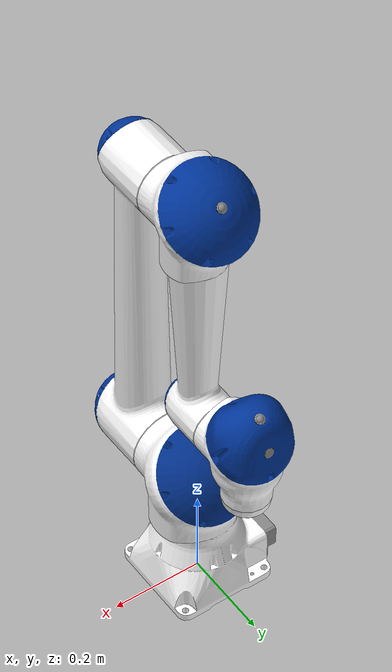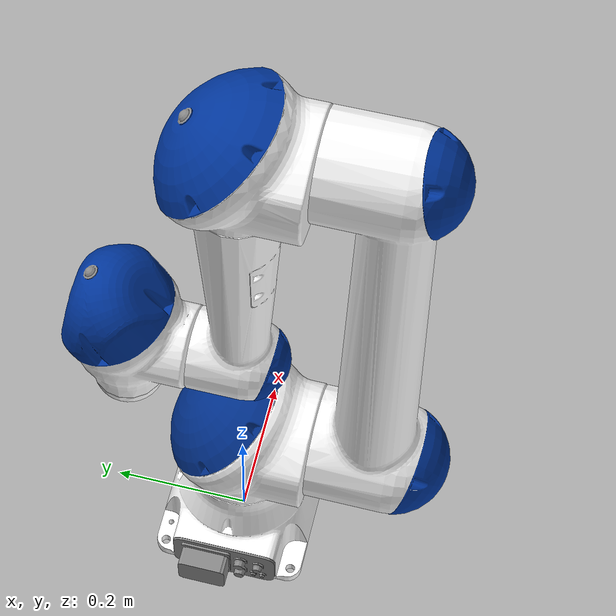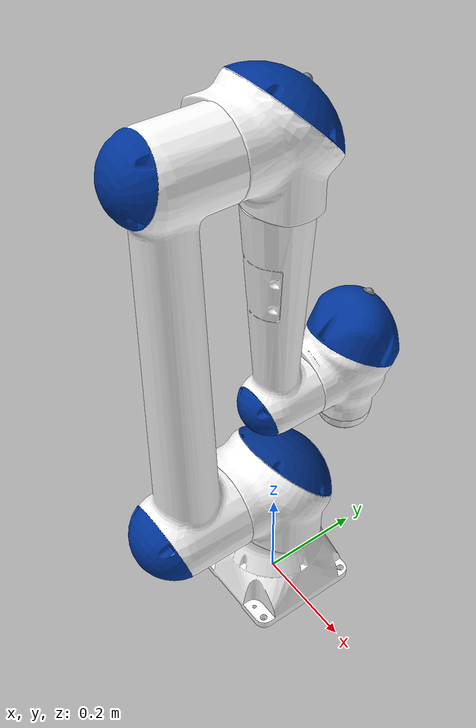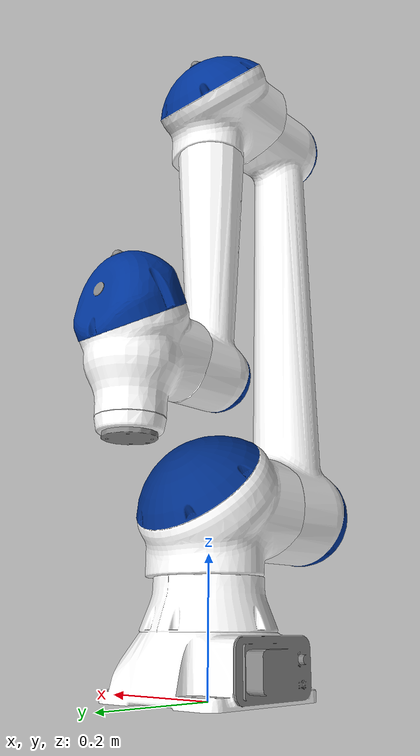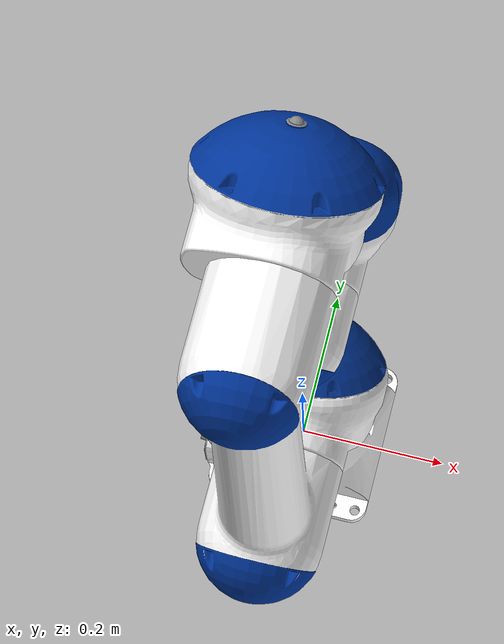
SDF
<?xml version="1.0"?>
<sdf version="1.9">
  <model name="yaskawa_hc10">
    <self_collide>false</self_collide>
    <allow_auto_disable>false</allow_auto_disable>

    <link name="base_link">
      <inertial>
        <pose>0 0 0.10 0 0 0</pose>
        <mass>24.0</mass>
        <inertia>
          <ixx>0.35</ixx>
          <iyy>0.35</iyy>
          <izz>0.30</izz>
          <ixy>0</ixy>
          <ixz>0</ixz>
          <iyz>0</iyz>
        </inertia>
      </inertial>
      <visual name="base_link_visual">
        <geometry>
          <mesh>
            <uri>model://yaskawa_hc10/meshes/hc10/visual/base_link.dae</uri>
          </mesh>
        </geometry>
      </visual>
      <collision name="base_link_collision">
        <geometry>
          <mesh>
            <uri>model://yaskawa_hc10/meshes/hc10/collision/base_link.stl</uri>
          </mesh>
        </geometry>
      </collision>
    </link>

    <link name="link_1_s">
      <pose relative_to="joint_1_s">0 0 0 0 0 0</pose>
      <inertial>
        <mass>8.5</mass>
        <inertia>
          <ixx>0.07</ixx>
          <iyy>0.07</iyy>
          <izz>0.05</izz>
          <ixy>0</ixy>
          <ixz>0</ixz>
          <iyz>0</iyz>
        </inertia>
      </inertial>
      <visual name="link_1_s_visual">
        <geometry>
          <mesh>
            <uri>model://yaskawa_hc10/meshes/hc10/visual/link_1_s.dae</uri>
          </mesh>
        </geometry>
      </visual>
      <collision name="link_1_s_collision">
        <geometry>
          <mesh>
            <uri>model://yaskawa_hc10/meshes/hc10/collision/link_1_s.stl</uri>
          </mesh>
        </geometry>
      </collision>
    </link>

    <link name="link_2_l">
      <pose relative_to="joint_2_l">0 0 0 0 0 0</pose>
      <inertial>
        <mass>7.0</mass>
        <inertia>
          <ixx>0.06</ixx>
          <iyy>0.06</iyy>
          <izz>0.05</izz>
          <ixy>0</ixy>
          <ixz>0</ixz>
          <iyz>0</iyz>
        </inertia>
      </inertial>
      <visual name="link_2_l_visual">
        <geometry>
          <mesh>
            <uri>model://yaskawa_hc10/meshes/hc10/visual/link_2_l.dae</uri>
          </mesh>
        </geometry>
      </visual>
      <collision name="link_2_l_collision">
        <geometry>
          <mesh>
            <uri>model://yaskawa_hc10/meshes/hc10/collision/link_2_l.stl</uri>
          </mesh>
        </geometry>
      </collision>
    </link>

    <link name="link_3_u">
      <pose relative_to="joint_3_u">0 0 0 0 0 0</pose>
      <inertial>
        <mass>6.0</mass>
        <inertia>
          <ixx>0.05</ixx>
          <iyy>0.05</iyy>
          <izz>0.04</izz>
          <ixy>0</ixy>
          <ixz>0</ixz>
          <iyz>0</iyz>
        </inertia>
      </inertial>
      <visual name="link_3_u_visual">
        <geometry>
          <mesh>
            <uri>model://yaskawa_hc10/meshes/hc10/visual/link_3_u.dae</uri>
          </mesh>
        </geometry>
      </visual>
      <collision name="link_3_u_collision">
        <geometry>
          <mesh>
            <uri>model://yaskawa_hc10/meshes/hc10/collision/link_3_u.stl</uri>
          </mesh>
        </geometry>
      </collision>
    </link>

    <link name="link_4_r">
      <pose relative_to="joint_4_r">0 0 0 0 0 0</pose>
      <inertial>
        <mass>3.5</mass>
        <inertia>
          <ixx>0.03</ixx>
          <iyy>0.03</iyy>
          <izz>0.02</izz>
          <ixy>0</ixy>
          <ixz>0</ixz>
          <iyz>0</iyz>
        </inertia>
      </inertial>
      <visual name="link_4_r_visual">
        <geometry>
          <mesh>
            <uri>model://yaskawa_hc10/meshes/hc10/visual/link_4_r.dae</uri>
          </mesh>
        </geometry>
      </visual>
      <collision name="link_4_r_collision">
        <geometry>
          <mesh>
            <uri>model://yaskawa_hc10/meshes/hc10/collision/link_4_r.stl</uri>
          </mesh>
        </geometry>
      </collision>
    </link>

    <link name="link_5_b">
      <pose relative_to="joint_5_b">0 0 0 0 0 0</pose>
      <inertial>
        <mass>2.5</mass>
        <inertia>
          <ixx>0.02</ixx>
          <iyy>0.02</iyy>
          <izz>0.015</izz>
          <ixy>0</ixy>
          <ixz>0</ixz>
          <iyz>0</iyz>
        </inertia>
      </inertial>
      <visual name="link_5_b_visual">
        <geometry>
          <mesh>
            <uri>model://yaskawa_hc10/meshes/hc10/visual/link_5_b.dae</uri>
          </mesh>
        </geometry>
      </visual>
      <collision name="link_5_b_collision">
        <geometry>
          <mesh>
            <uri>model://yaskawa_hc10/meshes/hc10/collision/link_5_b.stl</uri>
          </mesh>
        </geometry>
      </collision>
    </link>

    <link name="link_6_t">
      <pose relative_to="joint_6_t">0 0 0 0 0 0</pose>
      <inertial>
        <mass>1.2</mass>
        <inertia>
          <ixx>0.008</ixx>
          <iyy>0.008</iyy>
          <izz>0.006</izz>
          <ixy>0</ixy>
          <ixz>0</ixz>
          <iyz>0</iyz>
        </inertia>
      </inertial>
      <visual name="link_6_t_visual">
        <geometry>
          <mesh>
            <uri>model://yaskawa_hc10/meshes/hc10/visual/link_6_t.dae</uri>
          </mesh>
        </geometry>
      </visual>
      <collision name="link_6_t_collision">
        <geometry>
          <mesh>
            <uri>model://yaskawa_hc10/meshes/hc10/collision/link_6_t.stl</uri>
          </mesh>
        </geometry>
      </collision>
    </link>

    <link name="tool0">
      <pose relative_to="joint_6_t-tool0">0 0 0 0 0 0</pose>
    </link>
    <link name="base">
      <pose relative_to="base_link-base">0 0 0 0 0 0</pose>
    </link>

    <joint name="world_joint" type="fixed">
      <parent>world</parent>
      <child>base_link</child>
    </joint>

    <joint name="joint_1_s" type="revolute">
      <parent>base_link</parent>
      <child>link_1_s</child>
      <pose relative_to="base_link">0 0 0.275 0 0 0</pose>
      <axis>
        <xyz>0 0 1</xyz>
        <limit>
          <lower>-3.14159265359</lower>
          <upper>3.14159265359</upper>
          <effort>700.0</effort>
          <velocity>2.26892802759</velocity>
        </limit>
        <dynamics>
          <damping>0.7</damping>
          <friction>0.05</friction>
        </dynamics>
      </axis>
    </joint>

    <joint name="joint_2_l" type="revolute">
      <parent>link_1_s</parent>
      <child>link_2_l</child>
      <pose relative_to="link_1_s">0 0 0 0 0 0</pose>
      <axis>
        <xyz>0 1 0</xyz>
        <limit>
          <lower>-3.14159265359</lower>
          <upper>3.14159265359</upper>
          <effort>700.0</effort>
          <velocity>2.26892802759</velocity>
        </limit>
        <dynamics>
          <damping>0.7</damping>
          <friction>0.05</friction>
        </dynamics>
      </axis>
    </joint>

    <joint name="joint_3_u" type="revolute">
      <parent>link_2_l</parent>
      <child>link_3_u</child>
      <pose relative_to="link_2_l">0 0 0.700 0 0 0</pose>
      <axis>
        <xyz>0 -1 0</xyz>
        <limit>
          <lower>-0.08726646260</lower>
          <upper>6.19591884458</upper>
          <effort>260.0</effort>
          <velocity>3.14159265359</velocity>
        </limit>
        <dynamics>
          <damping>0.6</damping>
          <friction>0.05</friction>
        </dynamics>
      </axis>
    </joint>

    <joint name="joint_4_r" type="revolute">
      <parent>link_3_u</parent>
      <child>link_4_r</child>
      <pose relative_to="link_3_u">0 0 -0.500 0 0 0</pose>
      <axis>
        <xyz>0 0 1</xyz>
        <limit>
          <lower>-3.14159265359</lower>
          <upper>3.14159265359</upper>
          <effort>39.20</effort>
          <velocity>3.14159265359</velocity>
        </limit>
        <dynamics>
          <damping>0.9</damping>
          <friction>0.10</friction>
        </dynamics>
      </axis>
    </joint>

    <joint name="joint_5_b" type="revolute">
      <parent>link_4_r</parent>
      <child>link_5_b</child>
      <pose relative_to="link_4_r">0 0.162 0 0 0 0</pose>
      <axis>
        <xyz>0 -1 0</xyz>
        <limit>
          <lower>-3.14159265359</lower>
          <upper>3.14159265359</upper>
          <effort>31.36</effort>
          <velocity>4.36332312999</velocity>
        </limit>
        <dynamics>
          <damping>0.7</damping>
          <friction>0.08</friction>
        </dynamics>
      </axis>
    </joint>

    <joint name="joint_6_t" type="revolute">
      <parent>link_5_b</parent>
      <child>link_6_t</child>
      <pose relative_to="link_5_b">0 0 0 0 0 0</pose>
      <axis>
        <xyz>0 0 1</xyz>
        <limit>
          <lower>-3.14159265359</lower>
          <upper>3.14159265359</upper>
          <effort>31.36</effort>
          <velocity>4.36332312999</velocity>
        </limit>
        <dynamics>
          <damping>0.6</damping>
          <friction>0.06</friction>
        </dynamics>
      </axis>
    </joint>

    <joint name="joint_6_t-tool0" type="fixed">
      <parent>link_6_t</parent>
      <child>tool0</child>
      <pose relative_to="link_6_t">0 0 -0.130 3.14159265359 0 0</pose>
    </joint>

    <joint name="base_link-base" type="fixed">
      <parent>base_link</parent>
      <child>base</child>
      <pose relative_to="base_link">0 0 0.275 0 0 0</pose>
    </joint>

    <plugin
      filename="gz-sim-joint-state-publisher-system"
      name="gz::sim::systems::JointStatePublisher">
      <joint_name>joint_1_s</joint_name>
      <joint_name>joint_2_l</joint_name>
      <joint_name>joint_3_u</joint_name>
      <joint_name>joint_4_r</joint_name>
      <joint_name>joint_5_b</joint_name>
      <joint_name>joint_6_t</joint_name>
    </plugin>

    <plugin
      filename="gz-sim-joint-trajectory-controller-system"
      name="gz::sim::systems::JointTrajectoryController">
      <joint_name>joint_1_s</joint_name>
      <initial_position>0.0</initial_position>
      <position_p_gain>170.0</position_p_gain>
      <position_i_gain>0.10</position_i_gain>
      <position_d_gain>25.0</position_d_gain>
      <position_i_min>-2.0</position_i_min>
      <position_i_max>2.0</position_i_max>
      <position_cmd_min>-340.0</position_cmd_min>
      <position_cmd_max>340.0</position_cmd_max>

      <joint_name>joint_2_l</joint_name>
      <initial_position>0.0</initial_position>
      <position_p_gain>170.0</position_p_gain>
      <position_i_gain>0.10</position_i_gain>
      <position_d_gain>25.0</position_d_gain>
      <position_i_min>-2.0</position_i_min>
      <position_i_max>2.0</position_i_max>
      <position_cmd_min>-340.0</position_cmd_min>
      <position_cmd_max>340.0</position_cmd_max>

      <joint_name>joint_3_u</joint_name>
      <initial_position>0.0</initial_position>
      <position_p_gain>120.0</position_p_gain>
      <position_i_gain>0.08</position_i_gain>
      <position_d_gain>18.0</position_d_gain>
      <position_i_min>-1.5</position_i_min>
      <position_i_max>1.5</position_i_max>
      <position_cmd_min>-220.0</position_cmd_min>
      <position_cmd_max>220.0</position_cmd_max>

      <joint_name>joint_4_r</joint_name>
      <initial_position>0.0</initial_position>
      <position_p_gain>40.0</position_p_gain>
      <position_i_gain>0.04</position_i_gain>
      <position_d_gain>6.0</position_d_gain>
      <position_i_min>-0.8</position_i_min>
      <position_i_max>0.8</position_i_max>
      <position_cmd_min>-90.0</position_cmd_min>
      <position_cmd_max>90.0</position_cmd_max>

      <joint_name>joint_5_b</joint_name>
      <initial_position>0.0</initial_position>
      <position_p_gain>30.0</position_p_gain>
      <position_i_gain>0.03</position_i_gain>
      <position_d_gain>5.0</position_d_gain>
      <position_i_min>-0.6</position_i_min>
      <position_i_max>0.6</position_i_max>
      <position_cmd_min>-70.0</position_cmd_min>
      <position_cmd_max>70.0</position_cmd_max>

      <joint_name>joint_6_t</joint_name>
      <initial_position>0.0</initial_position>
      <position_p_gain>25.0</position_p_gain>
      <position_i_gain>0.03</position_i_gain>
      <position_d_gain>4.0</position_d_gain>
      <position_i_min>-0.5</position_i_min>
      <position_i_max>0.5</position_i_max>
      <position_cmd_min>-60.0</position_cmd_min>
      <position_cmd_max>60.0</position_cmd_max>
    </plugin>
  </model>
</sdf>
